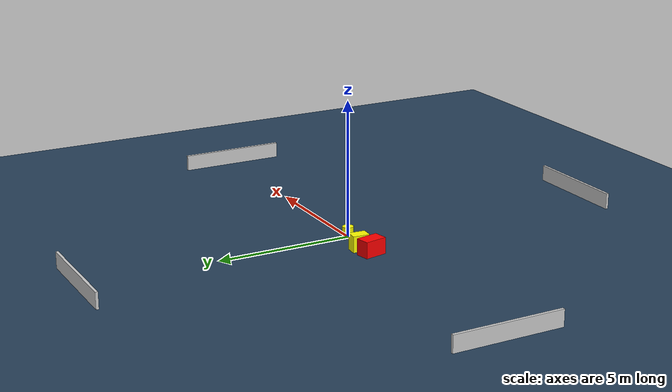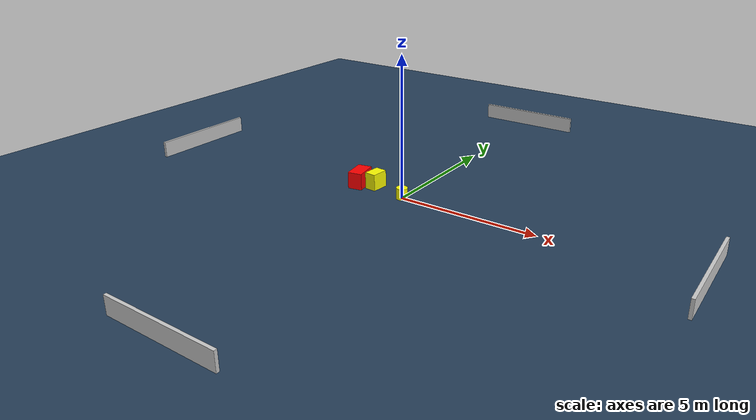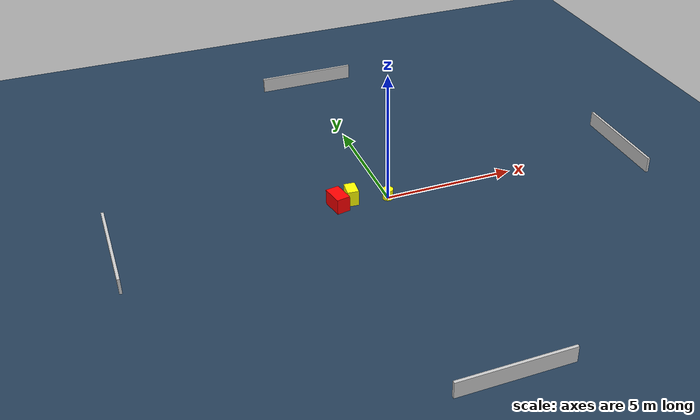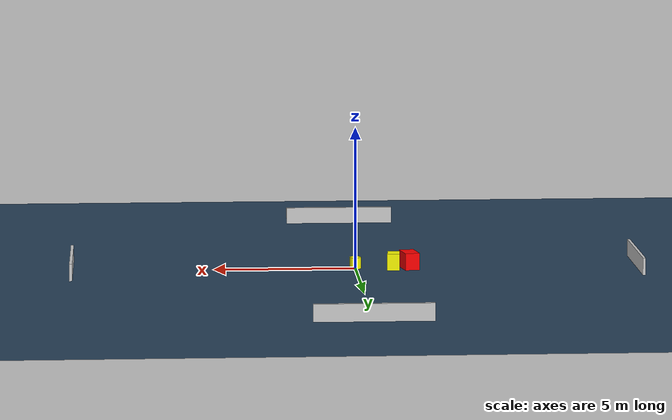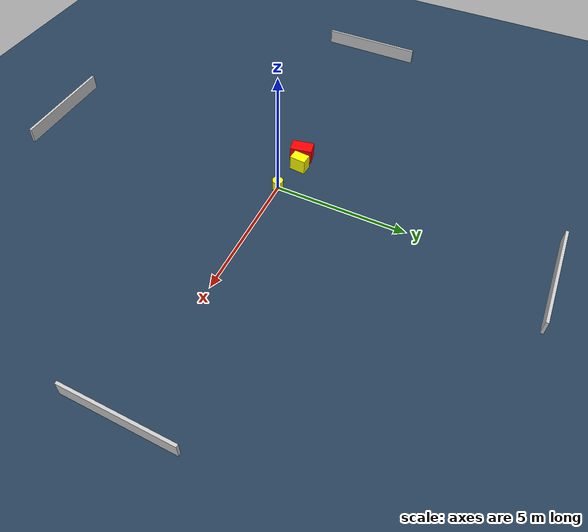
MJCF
<?xml version="1.0" ?>
<mujoco model="generated_environment">
  <option timestep="0.01" integrator="RK4" cone="elliptic"/>
  <default>
    <geom density="1"/>
  </default>
  <asset>
    <texture builtin="gradient" height="3072" name="skybox" rgb1="0.3 0.5 0.7" rgb2="0 0 0" type="skybox" width="512"/>
    <texture builtin="checker" height="300" name="groundplane" rgb1="0.2 0.3 0.4" rgb2="0.1 0.2 0.3" type="2d" width="300"/>
    <material name="groundplane" reflectance="0.2" texrepeat="5 5" texture="groundplane"/>
  </asset>
  <worldbody>
    <light dir="0 0 -1" directional="true" pos="0 0 1.5"/>
    <geom condim="3" friction="0.5 0.005 0.001" material="groundplane" name="floor" pos="0 0 0" size="0 0 0.05" type="plane"/>
    <body name="walls">
      <geom name="wall_1" condim="4" pos="-10.0 0.0 0.3" rgba="0.800000011920929 0.800000011920929 0.800000011920929 1.0" size="0.05 2.0 0.3" type="box"/>
      <geom name="wall_2" condim="4" pos="10.0 0.0 0.3" rgba="0.800000011920929 0.800000011920929 0.800000011920929 1.0" size="0.05 2.0 0.3" type="box"/>
      <geom name="wall_3" condim="4" pos="0.0 -10.0 0.3" rgba="0.800000011920929 0.800000011920929 0.800000011920929 1.0" size="2.0 0.05 0.3" type="box"/>
      <geom name="wall_4" condim="4" pos="0.0 10.0 0.3" rgba="0.800000011920929 0.800000011920929 0.800000011920929 1.0" size="2.0 0.05 0.3" type="box"/>
    </body>
    <body name="robot">
      <joint name="joint_x" type="slide" pos="0 0 0" axis="1 0 0"/>
      <joint name="joint_y" type="slide" pos="0 0 0" axis="0 1 0"/>
      <geom name="robot" type="cylinder" pos="0.0 0.0 0.2" size="0.2 0.2 0.0" mass="5.0" friction="1.0 0.005 0.0001" condim="4" rgba="1.0 1.0 0.0 1.0"/>
    </body>
    <body name="obstacle_1_movable">
      <geom name="obstacle_1_movable" condim="4" pos="-1.3317815871883343 0.2840395146363231 0.3" euler="0 0 175.06794892808168" friction="0.0 0.005 0.001" rgba="1.0 1.0 0.0 1.0" size="0.21236566242440955 0.308643273187724 0.3" type="box" mass="0.1"/>
      <joint type="free"/>
    </body>
    <body name="obstacle_2_static">
      <geom name="obstacle_2_static" condim="4" pos="-1.904736308517615 0.11711255795625518 0.3" euler="0 0 281.15276635111877" friction="0.0 0.005 0.001" rgba="1.0 0.0 0.0 1.0" size="0.42062921082129734 0.2584053896557253 0.3" type="box"/>
    </body>
  </worldbody>
  <actuator>
    <motor name="actuator_x" joint="joint_x" gear="1" ctrlrange="-1 1"/>
    <motor name="actuator_y" joint="joint_y" gear="1" ctrlrange="-1 1"/>
  </actuator>
</mujoco>
